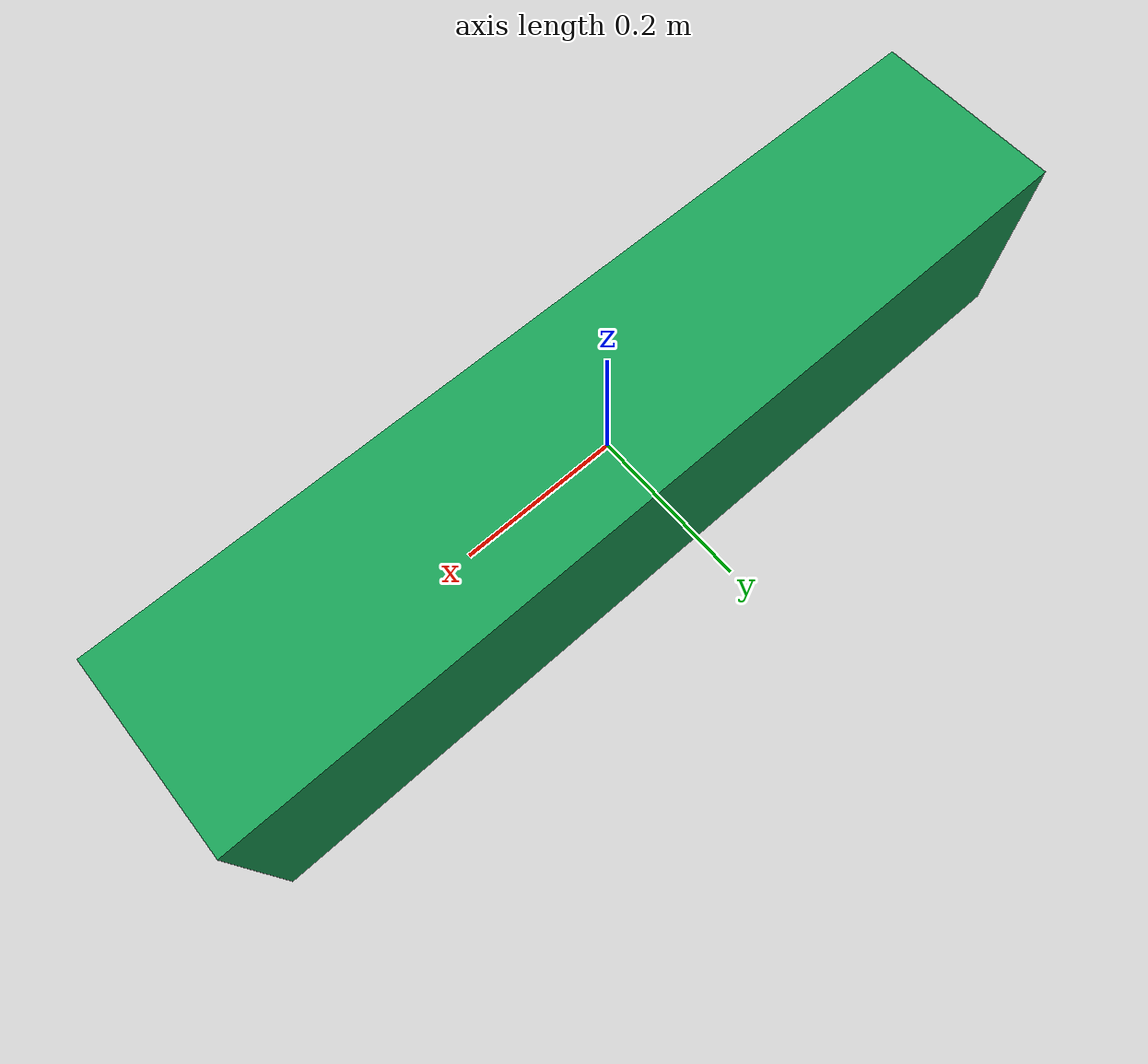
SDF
<?xml version="1.0"?>
<sdf version="1.9">
  <model name="pickup_zone">
    <static>true</static>
    <link name="pickup_zone_link">
      <inertial>
        <mass>4.000000</mass>
        <inertia>
          <ixx>0.004000000</ixx>
          <iyy>0.004000000</iyy>
          <izz>0.004000000</izz>
          <ixy>0</ixy>
          <ixz>0</ixz>
          <iyz>0</iyz>
        </inertia>
      </inertial>
      <visual name="pickup_zone_visual">
        <geometry>
          <mesh>
            <uri>meshes/pickup_zone.obj</uri>
          </mesh>
        </geometry>
        <material>
          <ambient>0.025000 0.162500 0.087500 1.000000</ambient>
          <diffuse>0.100000 0.650000 0.350000 1.000000</diffuse>
          <specular>0.120000 0.120000 0.120000 1.000000</specular>
        </material>
      </visual>
      <collision name="pickup_zone_pickup_zone_collision">
        <pose>0.000000000 0.000000000 0.000000000 0 0 0</pose>
        <geometry>
          <box>
            <size>1.110000014 0.234999999 0.264999986</size>
          </box>
        </geometry>
        <max_contacts>20</max_contacts>
        <surface>
          <friction>
            <ode>
              <mu>8.0</mu>
              <mu2>8.0</mu2>
              <slip1>0.0</slip1>
              <slip2>0.0</slip2>
            </ode>
            <torsional>
              <coefficient>1.0</coefficient>
              <use_patch_radius>true</use_patch_radius>
              <patch_radius>0.020000</patch_radius>
              <surface_radius>0.010000</surface_radius>
              <ode>
                <slip>0.0</slip>
              </ode>
            </torsional>
          </friction>
          <contact>
            <ode>
              <soft_cfm>0.000000</soft_cfm>
              <soft_erp>0.800000</soft_erp>
              <kp>1000000.000000</kp>
              <kd>100.000000</kd>
              <max_vel>0.010000</max_vel>
              <min_depth>0.002000</min_depth>
            </ode>
          </contact>
        </surface>
      </collision>
    </link>
  </model>
</sdf>
